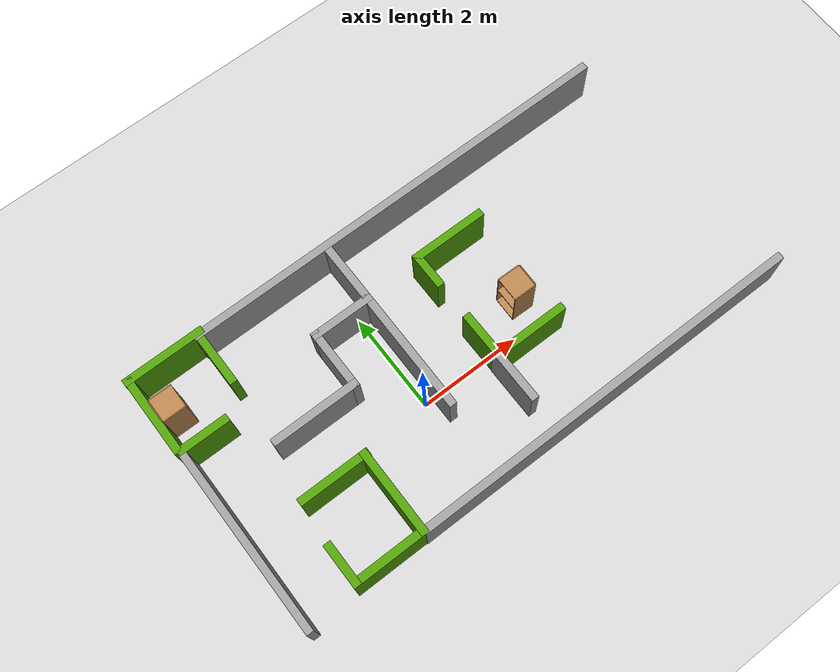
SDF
<sdf version="1.6">
 <world name="default">
  <model name="ground_plane">
   <static>1</static>
   <link name="link">
    <collision name="collision">
     <geometry><plane><normal>0 0 1</normal><size>100 100</size></plane></geometry>
     <surface><friction><ode><mu>100</mu><mu2>50</mu2></ode></friction></surface>
    </collision>
    <visual name="visual">
     <cast_shadows>0</cast_shadows>
     <geometry><plane><normal>0 0 1</normal><size>100 100</size></plane></geometry>
     <material>
      <script><uri>file://media/materials/scripts/gazebo.material</uri><name>Gazebo/Grey</name></script>
     </material>
    </visual>
   </link>
  </model>
  <model name="final_maze_v2">
   <link name="Wall_13">
    <pose>-5.19174 0.988606 0 0 -0 0</pose>
    <visual name="Wall_13_Visual">
     <pose>0 0 0.5 0 -0 0</pose>
     <geometry><box><size>1 0.15 1</size></box></geometry>
     <material>
      <script><uri>file://media/materials/scripts/gazebo.material</uri><name>Gazebo/Grey</name></script>
      <ambient>0.305882 0.603922 0.0235294 1</ambient>
      <shader type="pixel"/>
     </material>
     <meta><layer>0</layer></meta>
    </visual>
    <collision name="Wall_13_Collision">
     <pose>0 0 0.5 0 -0 0</pose>
     <geometry><box><size>1 0.15 1</size></box></geometry>
     <surface>
      <friction>
       <ode><mu>1</mu><mu2>1</mu2><fdir1>0 0 0</fdir1><slip1>0</slip1><slip2>0</slip2></ode>
       <torsional>
        <coefficient>1</coefficient>
        <patch_radius>0</patch_radius>
        <surface_radius>0</surface_radius>
        <use_patch_radius>1</use_patch_radius>
        <ode><slip>0</slip></ode>
       </torsional>
      </friction>
      <bounce><restitution_coefficient>0</restitution_coefficient><threshold>1e+06</threshold></bounce>
      <contact>
       <collide_without_contact>0</collide_without_contact>
       <collide_without_contact_bitmask>1</collide_without_contact_bitmask>
       <collide_bitmask>1</collide_bitmask>
       <ode>
        <soft_cfm>0</soft_cfm>
        <soft_erp>0.2</soft_erp>
        <kp>1e+13</kp>
        <kd>1</kd>
        <max_vel>0.01</max_vel>
        <min_depth>0</min_depth>
       </ode>
       <bullet>
        <split_impulse>1</split_impulse>
        <split_impulse_penetration_threshold>-0.01</split_impulse_penetration_threshold>
        <soft_cfm>0</soft_cfm>
        <soft_erp>0.2</soft_erp>
        <kp>1e+13</kp>
        <kd>1</kd>
       </bullet>
      </contact>
     </surface>
    </collision>
   </link>
   <link name="Wall_15">
    <pose>-4.27719 2.00796 0 0 0 -1.5708</pose>
    <inertial>
     <inertia><ixx>0</ixx><ixy>0</ixy><ixz>0</ixz><iyy>0</iyy><iyz>0</iyz><izz>0</izz></inertia>
     <mass>0</mass>
    </inertial>
    <visual name="Wall_15_Visual">
     <pose>0 0 0.5 0 -0 0</pose>
     <geometry><box><size>1.16992 0.15 1</size></box></geometry>
     <material>
      <script><uri>file://media/materials/scripts/gazebo.material</uri><name>Gazebo/Grey</name></script>
      <ambient>0.305882 0.603922 0.0235294 1</ambient>
      <shader type="pixel"/>
     </material>
     <meta><layer>0</layer></meta>
    </visual>
    <collision name="Wall_15_Collision">
     <pose>0 0 0.5 0 -0 0</pose>
     <geometry><box><size>1.16992 0.15 1</size></box></geometry>
     <surface>
      <friction>
       <ode><mu>1</mu><mu2>1</mu2><fdir1>0 0 0</fdir1><slip1>0</slip1><slip2>0</slip2></ode>
       <torsional>
        <coefficient>1</coefficient>
        <patch_radius>0</patch_radius>
        <surface_radius>0</surface_radius>
        <use_patch_radius>1</use_patch_radius>
        <ode><slip>0</slip></ode>
       </torsional>
      </friction>
      <bounce><restitution_coefficient>0</restitution_coefficient><threshold>1e+06</threshold></bounce>
      <contact>
       <collide_without_contact>0</collide_without_contact>
       <collide_without_contact_bitmask>1</collide_without_contact_bitmask>
       <collide_bitmask>1</collide_bitmask>
       <ode>
        <soft_cfm>0</soft_cfm>
        <soft_erp>0.2</soft_erp>
        <kp>1e+13</kp>
        <kd>1</kd>
        <max_vel>0.01</max_vel>
        <min_depth>0</min_depth>
       </ode>
       <bullet>
        <split_impulse>1</split_impulse>
        <split_impulse_penetration_threshold>-0.01</split_impulse_penetration_threshold>
        <soft_cfm>0</soft_cfm>
        <soft_erp>0.2</soft_erp>
        <kp>1e+13</kp>
        <kd>1</kd>
       </bullet>
      </contact>
     </surface>
    </collision>
   </link>
   <link name="Wall_17">
    <pose>-3.26274 -1.72039 0 0 -0 1.5708</pose>
    <visual name="Wall_17_Visual">
     <pose>0 0 0.5 0 -0 0</pose>
     <geometry><box><size>1.75 0.15 1</size></box></geometry>
     <material>
      <script><uri>file://media/materials/scripts/gazebo.material</uri><name>Gazebo/Grey</name></script>
      <ambient>0.305882 0.603922 0.0235294 1</ambient>
      <shader type="pixel"/>
     </material>
     <meta><layer>0</layer></meta>
    </visual>
    <collision name="Wall_17_Collision">
     <pose>0 0 0.5 0 -0 0</pose>
     <geometry><box><size>1.75 0.15 1</size></box></geometry>
     <surface>
      <friction>
       <ode><mu>1</mu><mu2>1</mu2><fdir1>0 0 0</fdir1><slip1>0</slip1><slip2>0</slip2></ode>
       <torsional>
        <coefficient>1</coefficient>
        <patch_radius>0</patch_radius>
        <surface_radius>0</surface_radius>
        <use_patch_radius>1</use_patch_radius>
        <ode><slip>0</slip></ode>
       </torsional>
      </friction>
      <bounce><restitution_coefficient>0</restitution_coefficient><threshold>1e+06</threshold></bounce>
      <contact>
       <collide_without_contact>0</collide_without_contact>
       <collide_without_contact_bitmask>1</collide_without_contact_bitmask>
       <collide_bitmask>1</collide_bitmask>
       <ode>
        <soft_cfm>0</soft_cfm>
        <soft_erp>0.2</soft_erp>
        <kp>1e+13</kp>
        <kd>1</kd>
        <max_vel>0.01</max_vel>
        <min_depth>0</min_depth>
       </ode>
       <bullet>
        <split_impulse>1</split_impulse>
        <split_impulse_penetration_threshold>-0.01</split_impulse_penetration_threshold>
        <soft_cfm>0</soft_cfm>
        <soft_erp>0.2</soft_erp>
        <kp>1e+13</kp>
        <kd>1</kd>
       </bullet>
      </contact>
     </surface>
    </collision>
   </link>
   <link name="Wall_17_clone">
    <pose>-4.61531 -2.15743 0 0 -0 1.5708</pose>
    <inertial>
     <inertia><ixx>0</ixx><ixy>0</ixy><ixz>0</ixz><iyy>0</iyy><iyz>0</iyz><izz>0</izz></inertia>
     <mass>0</mass>
    </inertial>
    <visual name="Wall_17_Visual">
     <pose>0 0 0.5 0 -0 0</pose>
     <geometry><box><size>0.870384 0.15 1</size></box></geometry>
     <material>
      <script><uri>file://media/materials/scripts/gazebo.material</uri><name>Gazebo/Grey</name></script>
      <ambient>0.305882 0.603922 0.0235294 1</ambient>
      <shader type="pixel"/>
     </material>
     <meta><layer>0</layer></meta>
    </visual>
    <collision name="Wall_17_Collision">
     <pose>0 0 0.5 0 -0 0</pose>
     <geometry><box><size>0.870384 0.15 1</size></box></geometry>
     <surface>
      <friction>
       <ode><mu>1</mu><mu2>1</mu2><fdir1>0 0 0</fdir1><slip1>0</slip1><slip2>0</slip2></ode>
       <torsional>
        <coefficient>1</coefficient>
        <patch_radius>0</patch_radius>
        <surface_radius>0</surface_radius>
        <use_patch_radius>1</use_patch_radius>
        <ode><slip>0</slip></ode>
       </torsional>
      </friction>
      <bounce><restitution_coefficient>0</restitution_coefficient><threshold>1e+06</threshold></bounce>
      <contact>
       <collide_without_contact>0</collide_without_contact>
       <collide_without_contact_bitmask>1</collide_without_contact_bitmask>
       <collide_bitmask>1</collide_bitmask>
       <ode>
        <soft_cfm>0</soft_cfm>
        <soft_erp>0.2</soft_erp>
        <kp>1e+13</kp>
        <kd>1</kd>
        <max_vel>0.01</max_vel>
        <min_depth>0</min_depth>
       </ode>
       <bullet>
        <split_impulse>1</split_impulse>
        <split_impulse_penetration_threshold>-0.01</split_impulse_penetration_threshold>
        <soft_cfm>0</soft_cfm>
        <soft_erp>0.2</soft_erp>
        <kp>1e+13</kp>
        <kd>1</kd>
       </bullet>
      </contact>
     </surface>
    </collision>
   </link>
   <link name="Wall_18">
    <pose>-3.88391 -0.920394 0 0 -0 3.14159</pose>
    <inertial>
     <inertia><ixx>0</ixx><ixy>0</ixy><ixz>0</ixz><iyy>0</iyy><iyz>0</iyz><izz>0</izz></inertia>
     <mass>0</mass>
    </inertial>
    <visual name="Wall_18_Visual">
     <pose>0 0 0.5 0 -0 0</pose>
     <geometry><box><size>1.41475 0.15 1</size></box></geometry>
     <material>
      <script><uri>file://media/materials/scripts/gazebo.material</uri><name>Gazebo/Grey</name></script>
      <ambient>0.305882 0.603922 0.0235294 1</ambient>
      <shader type="pixel"/>
     </material>
     <meta><layer>0</layer></meta>
    </visual>
    <collision name="Wall_18_Collision">
     <pose>0 0 0.5 0 -0 0</pose>
     <geometry><box><size>1.41475 0.15 1</size></box></geometry>
     <surface>
      <friction>
       <ode><mu>1</mu><mu2>1</mu2><fdir1>0 0 0</fdir1><slip1>0</slip1><slip2>0</slip2></ode>
       <torsional>
        <coefficient>1</coefficient>
        <patch_radius>0</patch_radius>
        <surface_radius>0</surface_radius>
        <use_patch_radius>1</use_patch_radius>
        <ode><slip>0</slip></ode>
       </torsional>
      </friction>
      <bounce><restitution_coefficient>0</restitution_coefficient><threshold>1e+06</threshold></bounce>
      <contact>
       <collide_without_contact>0</collide_without_contact>
       <collide_without_contact_bitmask>1</collide_without_contact_bitmask>
       <collide_bitmask>1</collide_bitmask>
       <ode>
        <soft_cfm>0</soft_cfm>
        <soft_erp>0.2</soft_erp>
        <kp>1e+13</kp>
        <kd>1</kd>
        <max_vel>0.01</max_vel>
        <min_depth>0</min_depth>
       </ode>
       <bullet>
        <split_impulse>1</split_impulse>
        <split_impulse_penetration_threshold>-0.01</split_impulse_penetration_threshold>
        <soft_cfm>0</soft_cfm>
        <soft_erp>0.2</soft_erp>
        <kp>1e+13</kp>
        <kd>1</kd>
       </bullet>
      </contact>
     </surface>
    </collision>
   </link>
   <link name="Wall_20">
    <pose>-3.48874 0.163606 0 0 -0 0</pose>
    <visual name="Wall_20_Visual">
     <pose>0 0 0.5 0 -0 0</pose>
     <geometry><box><size>1.75 0.15 1</size></box></geometry>
     <material>
      <script><uri>file://media/materials/scripts/gazebo.material</uri><name>Gazebo/Grey</name></script>
      <ambient>1 1 1 1</ambient>
      <shader type="pixel"/>
     </material>
     <meta><layer>0</layer></meta>
    </visual>
    <collision name="Wall_20_Collision">
     <pose>0 0 0.5 0 -0 0</pose>
     <geometry><box><size>1.75 0.15 1</size></box></geometry>
     <surface>
      <friction>
       <ode><mu>1</mu><mu2>1</mu2><fdir1>0 0 0</fdir1><slip1>0</slip1><slip2>0</slip2></ode>
       <torsional>
        <coefficient>1</coefficient>
        <patch_radius>0</patch_radius>
        <surface_radius>0</surface_radius>
        <use_patch_radius>1</use_patch_radius>
        <ode><slip>0</slip></ode>
       </torsional>
      </friction>
      <bounce><restitution_coefficient>0</restitution_coefficient><threshold>1e+06</threshold></bounce>
      <contact>
       <collide_without_contact>0</collide_without_contact>
       <collide_without_contact_bitmask>1</collide_without_contact_bitmask>
       <collide_bitmask>1</collide_bitmask>
       <ode>
        <soft_cfm>0</soft_cfm>
        <soft_erp>0.2</soft_erp>
        <kp>1e+13</kp>
        <kd>1</kd>
        <max_vel>0.01</max_vel>
        <min_depth>0</min_depth>
       </ode>
       <bullet>
        <split_impulse>1</split_impulse>
        <split_impulse_penetration_threshold>-0.01</split_impulse_penetration_threshold>
        <soft_cfm>0</soft_cfm>
        <soft_erp>0.2</soft_erp>
        <kp>1e+13</kp>
        <kd>1</kd>
       </bullet>
      </contact>
     </surface>
    </collision>
   </link>
   <link name="Wall_21">
    <pose>-2.68873 0.713606 0 0 -0 1.5708</pose>
    <visual name="Wall_21_Visual">
     <pose>0 0 0.5 0 -0 0</pose>
     <geometry><box><size>1.25 0.15 1</size></box></geometry>
     <material>
      <script><uri>file://media/materials/scripts/gazebo.material</uri><name>Gazebo/Grey</name></script>
      <ambient>1 1 1 1</ambient>
      <shader type="pixel"/>
     </material>
     <meta><layer>0</layer></meta>
    </visual>
    <collision name="Wall_21_Collision">
     <pose>0 0 0.5 0 -0 0</pose>
     <geometry><box><size>1.25 0.15 1</size></box></geometry>
     <surface>
      <friction>
       <ode><mu>1</mu><mu2>1</mu2><fdir1>0 0 0</fdir1><slip1>0</slip1><slip2>0</slip2></ode>
       <torsional>
        <coefficient>1</coefficient>
        <patch_radius>0</patch_radius>
        <surface_radius>0</surface_radius>
        <use_patch_radius>1</use_patch_radius>
        <ode><slip>0</slip></ode>
       </torsional>
      </friction>
      <bounce><restitution_coefficient>0</restitution_coefficient><threshold>1e+06</threshold></bounce>
      <contact>
       <collide_without_contact>0</collide_without_contact>
       <collide_without_contact_bitmask>1</collide_without_contact_bitmask>
       <collide_bitmask>1</collide_bitmask>
       <ode>
        <soft_cfm>0</soft_cfm>
        <soft_erp>0.2</soft_erp>
        <kp>1e+13</kp>
        <kd>1</kd>
        <max_vel>0.01</max_vel>
        <min_depth>0</min_depth>
       </ode>
       <bullet>
        <split_impulse>1</split_impulse>
        <split_impulse_penetration_threshold>-0.01</split_impulse_penetration_threshold>
        <soft_cfm>0</soft_cfm>
        <soft_erp>0.2</soft_erp>
        <kp>1e+13</kp>
        <kd>1</kd>
       </bullet>
      </contact>
     </surface>
    </collision>
   </link>
   <link name="Wall_22">
    <pose>-2.13874 1.26361 0 0 -0 0</pose>
    <visual name="Wall_22_Visual">
     <pose>0 0 0.5 0 -0 0</pose>
     <geometry><box><size>1.25 0.15 1</size></box></geometry>
     <material>
      <script><uri>file://media/materials/scripts/gazebo.material</uri><name>Gazebo/Grey</name></script>
      <ambient>1 1 1 1</ambient>
      <shader type="pixel"/>
     </material>
     <meta><layer>0</layer></meta>
    </visual>
    <collision name="Wall_22_Collision">
     <pose>0 0 0.5 0 -0 0</pose>
     <geometry><box><size>1.25 0.15 1</size></box></geometry>
     <surface>
      <friction>
       <ode><mu>1</mu><mu2>1</mu2><fdir1>0 0 0</fdir1><slip1>0</slip1><slip2>0</slip2></ode>
       <torsional>
        <coefficient>1</coefficient>
        <patch_radius>0</patch_radius>
        <surface_radius>0</surface_radius>
        <use_patch_radius>1</use_patch_radius>
        <ode><slip>0</slip></ode>
       </torsional>
      </friction>
      <bounce><restitution_coefficient>0</restitution_coefficient><threshold>1e+06</threshold></bounce>
      <contact>
       <collide_without_contact>0</collide_without_contact>
       <collide_without_contact_bitmask>1</collide_without_contact_bitmask>
       <collide_bitmask>1</collide_bitmask>
       <ode>
        <soft_cfm>0</soft_cfm>
        <soft_erp>0.2</soft_erp>
        <kp>1e+13</kp>
        <kd>1</kd>
        <max_vel>0.01</max_vel>
        <min_depth>0</min_depth>
       </ode>
       <bullet>
        <split_impulse>1</split_impulse>
        <split_impulse_penetration_threshold>-0.01</split_impulse_penetration_threshold>
        <soft_cfm>0</soft_cfm>
        <soft_erp>0.2</soft_erp>
        <kp>1e+13</kp>
        <kd>1</kd>
       </bullet>
      </contact>
     </surface>
    </collision>
   </link>
   <link name="Wall_23">
    <pose>-1.58874 1.81361 0 0 -0 1.5708</pose>
    <visual name="Wall_23_Visual">
     <pose>0 0 0.5 0 -0 0</pose>
     <geometry><box><size>1.25 0.15 1</size></box></geometry>
     <material>
      <script><uri>file://media/materials/scripts/gazebo.material</uri><name>Gazebo/Grey</name></script>
      <ambient>1 1 1 1</ambient>
      <shader type="pixel"/>
     </material>
     <meta><layer>0</layer></meta>
    </visual>
    <collision name="Wall_23_Collision">
     <pose>0 0 0.5 0 -0 0</pose>
     <geometry><box><size>1.25 0.15 1</size></box></geometry>
     <surface>
      <friction>
       <ode><mu>1</mu><mu2>1</mu2><fdir1>0 0 0</fdir1><slip1>0</slip1><slip2>0</slip2></ode>
       <torsional>
        <coefficient>1</coefficient>
        <patch_radius>0</patch_radius>
        <surface_radius>0</surface_radius>
        <use_patch_radius>1</use_patch_radius>
        <ode><slip>0</slip></ode>
       </torsional>
      </friction>
      <bounce><restitution_coefficient>0</restitution_coefficient><threshold>1e+06</threshold></bounce>
      <contact>
       <collide_without_contact>0</collide_without_contact>
       <collide_without_contact_bitmask>1</collide_without_contact_bitmask>
       <collide_bitmask>1</collide_bitmask>
       <ode>
        <soft_cfm>0</soft_cfm>
        <soft_erp>0.2</soft_erp>
        <kp>1e+13</kp>
        <kd>1</kd>
        <max_vel>0.01</max_vel>
        <min_depth>0</min_depth>
       </ode>
       <bullet>
        <split_impulse>1</split_impulse>
        <split_impulse_penetration_threshold>-0.01</split_impulse_penetration_threshold>
        <soft_cfm>0</soft_cfm>
        <soft_erp>0.2</soft_erp>
        <kp>1e+13</kp>
        <kd>1</kd>
       </bullet>
      </contact>
     </surface>
    </collision>
   </link>
   <link name="Wall_25">
    <pose>-1.58874 0.088606 0 0 0 -1.5708</pose>
    <visual name="Wall_25_Visual">
     <pose>0 0 0.5 0 -0 0</pose>
     <geometry><box><size>2.5 0.15 1</size></box></geometry>
     <material>
      <script><uri>file://media/materials/scripts/gazebo.material</uri><name>Gazebo/Grey</name></script>
      <ambient>1 1 1 1</ambient>
      <shader type="pixel"/>
     </material>
     <meta><layer>0</layer></meta>
    </visual>
    <collision name="Wall_25_Collision">
     <pose>0 0 0.5 0 -0 0</pose>
     <geometry><box><size>2.5 0.15 1</size></box></geometry>
     <surface>
      <friction>
       <ode><mu>1</mu><mu2>1</mu2><fdir1>0 0 0</fdir1><slip1>0</slip1><slip2>0</slip2></ode>
       <torsional>
        <coefficient>1</coefficient>
        <patch_radius>0</patch_radius>
        <surface_radius>0</surface_radius>
        <use_patch_radius>1</use_patch_radius>
        <ode><slip>0</slip></ode>
       </torsional>
      </friction>
      <bounce><restitution_coefficient>0</restitution_coefficient><threshold>1e+06</threshold></bounce>
      <contact>
       <collide_without_contact>0</collide_without_contact>
       <collide_without_contact_bitmask>1</collide_without_contact_bitmask>
       <collide_bitmask>1</collide_bitmask>
       <ode>
        <soft_cfm>0</soft_cfm>
        <soft_erp>0.2</soft_erp>
        <kp>1e+13</kp>
        <kd>1</kd>
        <max_vel>0.01</max_vel>
        <min_depth>0</min_depth>
       </ode>
       <bullet>
        <split_impulse>1</split_impulse>
        <split_impulse_penetration_threshold>-0.01</split_impulse_penetration_threshold>
        <soft_cfm>0</soft_cfm>
        <soft_erp>0.2</soft_erp>
        <kp>1e+13</kp>
        <kd>1</kd>
       </bullet>
      </contact>
     </surface>
    </collision>
   </link>
   <link name="Wall_27">
    <pose>-0.439735 1.04861 0 0 -0 1.5708</pose>
    <visual name="Wall_27_Visual">
     <pose>0 0 0.5 0 -0 0</pose>
     <geometry><box><size>0.75 0.15 1</size></box></geometry>
     <material>
      <script><uri>file://media/materials/scripts/gazebo.material</uri><name>Gazebo/Grey</name></script>
      <ambient>0.305882 0.603922 0.0235294 1</ambient>
      <shader type="pixel"/>
     </material>
     <meta><layer>0</layer></meta>
    </visual>
    <collision name="Wall_27_Collision">
     <pose>0 0 0.5 0 -0 0</pose>
     <geometry><box><size>0.75 0.15 1</size></box></geometry>
     <surface>
      <friction>
       <ode><mu>1</mu><mu2>1</mu2><fdir1>0 0 0</fdir1><slip1>0</slip1><slip2>0</slip2></ode>
       <torsional>
        <coefficient>1</coefficient>
        <patch_radius>0</patch_radius>
        <surface_radius>0</surface_radius>
        <use_patch_radius>1</use_patch_radius>
        <ode><slip>0</slip></ode>
       </torsional>
      </friction>
      <bounce><restitution_coefficient>0</restitution_coefficient><threshold>1e+06</threshold></bounce>
      <contact>
       <collide_without_contact>0</collide_without_contact>
       <collide_without_contact_bitmask>1</collide_without_contact_bitmask>
       <collide_bitmask>1</collide_bitmask>
       <ode>
        <soft_cfm>0</soft_cfm>
        <soft_erp>0.2</soft_erp>
        <kp>1e+13</kp>
        <kd>1</kd>
        <max_vel>0.01</max_vel>
        <min_depth>0</min_depth>
       </ode>
       <bullet>
        <split_impulse>1</split_impulse>
        <split_impulse_penetration_threshold>-0.01</split_impulse_penetration_threshold>
        <soft_cfm>0</soft_cfm>
        <soft_erp>0.2</soft_erp>
        <kp>1e+13</kp>
        <kd>1</kd>
       </bullet>
      </contact>
     </surface>
    </collision>
   </link>
   <link name="Wall_28">
    <pose>0.235265 1.34861 0 0 -0 0</pose>
    <visual name="Wall_28_Visual">
     <pose>0 0 0.5 0 -0 0</pose>
     <geometry><box><size>1.5 0.15 1</size></box></geometry>
     <material>
      <script><uri>file://media/materials/scripts/gazebo.material</uri><name>Gazebo/Grey</name></script>
      <ambient>0.305882 0.603922 0.0235294 1</ambient>
      <shader type="pixel"/>
     </material>
     <meta><layer>0</layer></meta>
    </visual>
    <collision name="Wall_28_Collision">
     <pose>0 0 0.5 0 -0 0</pose>
     <geometry><box><size>1.5 0.15 1</size></box></geometry>
     <surface>
      <friction>
       <ode><mu>1</mu><mu2>1</mu2><fdir1>0 0 0</fdir1><slip1>0</slip1><slip2>0</slip2></ode>
       <torsional>
        <coefficient>1</coefficient>
        <patch_radius>0</patch_radius>
        <surface_radius>0</surface_radius>
        <use_patch_radius>1</use_patch_radius>
        <ode><slip>0</slip></ode>
       </torsional>
      </friction>
      <bounce><restitution_coefficient>0</restitution_coefficient><threshold>1e+06</threshold></bounce>
      <contact>
       <collide_without_contact>0</collide_without_contact>
       <collide_without_contact_bitmask>1</collide_without_contact_bitmask>
       <collide_bitmask>1</collide_bitmask>
       <ode>
        <soft_cfm>0</soft_cfm>
        <soft_erp>0.2</soft_erp>
        <kp>1e+13</kp>
        <kd>1</kd>
        <max_vel>0.01</max_vel>
        <min_depth>0</min_depth>
       </ode>
       <bullet>
        <split_impulse>1</split_impulse>
        <split_impulse_penetration_threshold>-0.01</split_impulse_penetration_threshold>
        <soft_cfm>0</soft_cfm>
        <soft_erp>0.2</soft_erp>
        <kp>1e+13</kp>
        <kd>1</kd>
       </bullet>
      </contact>
     </surface>
    </collision>
   </link>
   <link name="Wall_3">
    <pose>0.673122 -2.53429 0 0 -0 0</pose>
    <inertial>
     <inertia><ixx>0</ixx><ixy>0</ixy><ixz>0</ixz><iyy>0</iyy><iyz>0</iyz><izz>0</izz></inertia>
     <mass>0</mass>
    </inertial>
    <visual name="Wall_3_Visual">
     <pose>0 0 0.5 0 -0 0</pose>
     <geometry><box><size>7.88308 0.15 1</size></box></geometry>
     <material>
      <script><uri>file://media/materials/scripts/gazebo.material</uri><name>Gazebo/Grey</name></script>
      <ambient>1 1 1 1</ambient>
      <shader type="pixel"/>
     </material>
     <meta><layer>0</layer></meta>
    </visual>
    <collision name="Wall_3_Collision">
     <pose>0 0 0.5 0 -0 0</pose>
     <geometry><box><size>7.88308 0.15 1</size></box></geometry>
     <surface>
      <friction>
       <ode><mu>1</mu><mu2>1</mu2><fdir1>0 0 0</fdir1><slip1>0</slip1><slip2>0</slip2></ode>
       <torsional>
        <coefficient>1</coefficient>
        <patch_radius>0</patch_radius>
        <surface_radius>0</surface_radius>
        <use_patch_radius>1</use_patch_radius>
        <ode><slip>0</slip></ode>
       </torsional>
      </friction>
      <bounce><restitution_coefficient>0</restitution_coefficient><threshold>1e+06</threshold></bounce>
      <contact>
       <collide_without_contact>0</collide_without_contact>
       <collide_without_contact_bitmask>1</collide_without_contact_bitmask>
       <collide_bitmask>1</collide_bitmask>
       <ode>
        <soft_cfm>0</soft_cfm>
        <soft_erp>0.2</soft_erp>
        <kp>1e+13</kp>
        <kd>1</kd>
        <max_vel>0.01</max_vel>
        <min_depth>0</min_depth>
       </ode>
       <bullet>
        <split_impulse>1</split_impulse>
        <split_impulse_penetration_threshold>-0.01</split_impulse_penetration_threshold>
        <soft_cfm>0</soft_cfm>
        <soft_erp>0.2</soft_erp>
        <kp>1e+13</kp>
        <kd>1</kd>
       </bullet>
      </contact>
     </surface>
    </collision>
   </link>
   <link name="Wall_31">
    <pose>0.250265 -0.917394 0 0 -0 3.14159</pose>
    <visual name="Wall_31_Visual">
     <pose>0 0 0.5 0 -0 0</pose>
     <geometry><box><size>1.5 0.15 1</size></box></geometry>
     <material>
      <script><uri>file://media/materials/scripts/gazebo.material</uri><name>Gazebo/Grey</name></script>
      <ambient>0.305882 0.603922 0.0235294 1</ambient>
      <shader type="pixel"/>
     </material>
     <meta><layer>0</layer></meta>
    </visual>
    <collision name="Wall_31_Collision">
     <pose>0 0 0.5 0 -0 0</pose>
     <geometry><box><size>1.5 0.15 1</size></box></geometry>
     <surface>
      <friction>
       <ode><mu>1</mu><mu2>1</mu2><fdir1>0 0 0</fdir1><slip1>0</slip1><slip2>0</slip2></ode>
       <torsional>
        <coefficient>1</coefficient>
        <patch_radius>0</patch_radius>
        <surface_radius>0</surface_radius>
        <use_patch_radius>1</use_patch_radius>
        <ode><slip>0</slip></ode>
       </torsional>
      </friction>
      <bounce><restitution_coefficient>0</restitution_coefficient><threshold>1e+06</threshold></bounce>
      <contact>
       <collide_without_contact>0</collide_without_contact>
       <collide_without_contact_bitmask>1</collide_without_contact_bitmask>
       <collide_bitmask>1</collide_bitmask>
       <ode>
        <soft_cfm>0</soft_cfm>
        <soft_erp>0.2</soft_erp>
        <kp>1e+13</kp>
        <kd>1</kd>
        <max_vel>0.01</max_vel>
        <min_depth>0</min_depth>
       </ode>
       <bullet>
        <split_impulse>1</split_impulse>
        <split_impulse_penetration_threshold>-0.01</split_impulse_penetration_threshold>
        <soft_cfm>0</soft_cfm>
        <soft_erp>0.2</soft_erp>
        <kp>1e+13</kp>
        <kd>1</kd>
       </bullet>
      </contact>
     </surface>
    </collision>
   </link>
   <link name="Wall_33">
    <pose>-0.433794 -1.38953 0 0 0 -1.5708</pose>
    <inertial>
     <inertia><ixx>0</ixx><ixy>0</ixy><ixz>0</ixz><iyy>0</iyy><iyz>0</iyz><izz>0</izz></inertia>
     <mass>0</mass>
    </inertial>
    <visual name="Wall_33_Visual">
     <pose>0 0 0.5 0 -0 0</pose>
     <geometry><box><size>1.07217 0.15 1</size></box></geometry>
     <material>
      <script><uri>file://media/materials/scripts/gazebo.material</uri><name>Gazebo/Grey</name></script>
      <ambient>1 1 1 1</ambient>
      <shader type="pixel"/>
     </material>
     <meta><layer>0</layer></meta>
    </visual>
    <collision name="Wall_33_Collision">
     <pose>0 0 0.5 0 -0 0</pose>
     <geometry><box><size>1.07217 0.15 1</size></box></geometry>
     <surface>
      <friction>
       <ode><mu>1</mu><mu2>1</mu2><fdir1>0 0 0</fdir1><slip1>0</slip1><slip2>0</slip2></ode>
       <torsional>
        <coefficient>1</coefficient>
        <patch_radius>0</patch_radius>
        <surface_radius>0</surface_radius>
        <use_patch_radius>1</use_patch_radius>
        <ode><slip>0</slip></ode>
       </torsional>
      </friction>
      <bounce><restitution_coefficient>0</restitution_coefficient><threshold>1e+06</threshold></bounce>
      <contact>
       <collide_without_contact>0</collide_without_contact>
       <collide_without_contact_bitmask>1</collide_without_contact_bitmask>
       <collide_bitmask>1</collide_bitmask>
       <ode>
        <soft_cfm>0</soft_cfm>
        <soft_erp>0.2</soft_erp>
        <kp>1e+13</kp>
        <kd>1</kd>
        <max_vel>0.01</max_vel>
        <min_depth>0</min_depth>
       </ode>
       <bullet>
        <split_impulse>1</split_impulse>
        <split_impulse_penetration_threshold>-0.01</split_impulse_penetration_threshold>
        <soft_cfm>0</soft_cfm>
        <soft_erp>0.2</soft_erp>
        <kp>1e+13</kp>
        <kd>1</kd>
       </bullet>
      </contact>
     </surface>
    </collision>
   </link>
   <link name="Wall_6">
    <pose>-0.003764 2.51077 0 0 0 -3.14036</pose>
    <inertial>
     <inertia><ixx>0</ixx><ixy>0</ixy><ixz>0</ixz><iyy>0</iyy><iyz>0</iyz><izz>0</izz></inertia>
     <mass>0</mass>
    </inertial>
    <visual name="Wall_6_Visual">
     <pose>0 0 0.5 0 -0 0</pose>
     <geometry><box><size>8.72963 0.15 1</size></box></geometry>
     <material>
      <script><uri>file://media/materials/scripts/gazebo.material</uri><name>Gazebo/Grey</name></script>
      <ambient>1 1 1 1</ambient>
      <shader type="pixel"/>
     </material>
     <meta><layer>0</layer></meta>
    </visual>
    <collision name="Wall_6_Collision">
     <pose>0 0 0.5 0 -0 0</pose>
     <geometry><box><size>8.72963 0.15 1</size></box></geometry>
     <surface>
      <friction>
       <ode><mu>1</mu><mu2>1</mu2><fdir1>0 0 0</fdir1><slip1>0</slip1><slip2>0</slip2></ode>
       <torsional>
        <coefficient>1</coefficient>
        <patch_radius>0</patch_radius>
        <surface_radius>0</surface_radius>
        <use_patch_radius>1</use_patch_radius>
        <ode><slip>0</slip></ode>
       </torsional>
      </friction>
      <bounce><restitution_coefficient>0</restitution_coefficient><threshold>1e+06</threshold></bounce>
      <contact>
       <collide_without_contact>0</collide_without_contact>
       <collide_without_contact_bitmask>1</collide_without_contact_bitmask>
       <collide_bitmask>1</collide_bitmask>
       <ode>
        <soft_cfm>0</soft_cfm>
        <soft_erp>0.2</soft_erp>
        <kp>1e+13</kp>
        <kd>1</kd>
        <max_vel>0.01</max_vel>
        <min_depth>0</min_depth>
       </ode>
       <bullet>
        <split_impulse>1</split_impulse>
        <split_impulse_penetration_threshold>-0.01</split_impulse_penetration_threshold>
        <soft_cfm>0</soft_cfm>
        <soft_erp>0.2</soft_erp>
        <kp>1e+13</kp>
        <kd>1</kd>
       </bullet>
      </contact>
     </surface>
    </collision>
   </link>
   <link name="Wall_60">
    <pose>-5.67274 1.78539 0 0 0 -1.5708</pose>
    <inertial>
     <inertia><ixx>0</ixx><ixy>0</ixy><ixz>0</ixz><iyy>0</iyy><iyz>0</iyz><izz>0</izz></inertia>
     <mass>0</mass>
    </inertial>
    <visual name="Wall_60_Visual">
     <pose>0 0 0.5 0 -0 0</pose>
     <geometry><box><size>1.59713 0.15 1</size></box></geometry>
     <material>
      <script><uri>file://media/materials/scripts/gazebo.material</uri><name>Gazebo/Grey</name></script>
      <ambient>0.305882 0.603922 0.0235294 1</ambient>
      <shader type="pixel"/>
     </material>
     <meta><layer>0</layer></meta>
    </visual>
    <collision name="Wall_60_Collision">
     <pose>0 0 0.5 0 -0 0</pose>
     <geometry><box><size>1.59713 0.15 1</size></box></geometry>
     <surface>
      <friction>
       <ode><mu>1</mu><mu2>1</mu2><fdir1>0 0 0</fdir1><slip1>0</slip1><slip2>0</slip2></ode>
       <torsional>
        <coefficient>1</coefficient>
        <patch_radius>0</patch_radius>
        <surface_radius>0</surface_radius>
        <use_patch_radius>1</use_patch_radius>
        <ode><slip>0</slip></ode>
       </torsional>
      </friction>
      <bounce><restitution_coefficient>0</restitution_coefficient><threshold>1e+06</threshold></bounce>
      <contact>
       <collide_without_contact>0</collide_without_contact>
       <collide_without_contact_bitmask>1</collide_without_contact_bitmask>
       <collide_bitmask>1</collide_bitmask>
       <ode>
        <soft_cfm>0</soft_cfm>
        <soft_erp>0.2</soft_erp>
        <kp>1e+13</kp>
        <kd>1</kd>
        <max_vel>0.01</max_vel>
        <min_depth>0</min_depth>
       </ode>
       <bullet>
        <split_impulse>1</split_impulse>
        <split_impulse_penetration_threshold>-0.01</split_impulse_penetration_threshold>
        <soft_cfm>0</soft_cfm>
        <soft_erp>0.2</soft_erp>
        <kp>1e+13</kp>
        <kd>1</kd>
       </bullet>
      </contact>
     </surface>
    </collision>
   </link>
   <link name="Wall_60_clone">
    <pose>-4.95751 2.54531 0 0 0 -3.13908</pose>
    <inertial>
     <inertia><ixx>0</ixx><ixy>0</ixy><ixz>0</ixz><iyy>0</iyy><iyz>0</iyz><izz>0</izz></inertia>
     <mass>0</mass>
    </inertial>
    <visual name="Wall_60_Visual">
     <pose>0 0 0.5 0 -0 0</pose>
     <geometry><box><size>1.59713 0.15 1</size></box></geometry>
     <material>
      <script><uri>file://media/materials/scripts/gazebo.material</uri><name>Gazebo/Grey</name></script>
      <ambient>0.305882 0.603922 0.0235294 1</ambient>
      <shader type="pixel"/>
     </material>
     <meta><layer>0</layer></meta>
    </visual>
    <collision name="Wall_60_Collision">
     <pose>0 0 0.5 0 -0 0</pose>
     <geometry><box><size>1.59713 0.15 1</size></box></geometry>
     <surface>
      <friction>
       <ode><mu>1</mu><mu2>1</mu2><fdir1>0 0 0</fdir1><slip1>0</slip1><slip2>0</slip2></ode>
       <torsional>
        <coefficient>1</coefficient>
        <patch_radius>0</patch_radius>
        <surface_radius>0</surface_radius>
        <use_patch_radius>1</use_patch_radius>
        <ode><slip>0</slip></ode>
       </torsional>
      </friction>
      <bounce><restitution_coefficient>0</restitution_coefficient><threshold>1e+06</threshold></bounce>
      <contact>
       <collide_without_contact>0</collide_without_contact>
       <collide_without_contact_bitmask>1</collide_without_contact_bitmask>
       <collide_bitmask>1</collide_bitmask>
       <ode>
        <soft_cfm>0</soft_cfm>
        <soft_erp>0.2</soft_erp>
        <kp>1e+13</kp>
        <kd>1</kd>
        <max_vel>0.01</max_vel>
        <min_depth>0</min_depth>
       </ode>
       <bullet>
        <split_impulse>1</split_impulse>
        <split_impulse_penetration_threshold>-0.01</split_impulse_penetration_threshold>
        <soft_cfm>0</soft_cfm>
        <soft_erp>0.2</soft_erp>
        <kp>1e+13</kp>
        <kd>1</kd>
       </bullet>
      </contact>
     </surface>
    </collision>
   </link>
   <link name="Wall_62_clone_0">
    <pose>-0.429244 -0.47996 0 0 0 -1.56418</pose>
    <inertial>
     <inertia><ixx>0</ixx><ixy>0</ixy><ixz>0</ixz><iyy>0</iyy><iyz>0</iyz><izz>0</izz></inertia>
     <mass>0</mass>
    </inertial>
    <visual name="Wall_62_Visual">
     <pose>0 0 0.5 0 -0 0</pose>
     <geometry><box><size>0.927565 0.15 1</size></box></geometry>
     <material>
      <script><uri>file://media/materials/scripts/gazebo.material</uri><name>Gazebo/Grey</name></script>
      <ambient>0.305882 0.603922 0.0235294 1</ambient>
      <shader type="pixel"/>
     </material>
     <meta><layer>0</layer></meta>
    </visual>
    <collision name="Wall_62_Collision">
     <pose>0 0 0.5 0 -0 0</pose>
     <geometry><box><size>0.927565 0.15 1</size></box></geometry>
     <surface>
      <friction>
       <ode><mu>1</mu><mu2>1</mu2><fdir1>0 0 0</fdir1><slip1>0</slip1><slip2>0</slip2></ode>
       <torsional>
        <coefficient>1</coefficient>
        <patch_radius>0</patch_radius>
        <surface_radius>0</surface_radius>
        <use_patch_radius>1</use_patch_radius>
        <ode><slip>0</slip></ode>
       </torsional>
      </friction>
      <bounce><restitution_coefficient>0</restitution_coefficient><threshold>1e+06</threshold></bounce>
      <contact>
       <collide_without_contact>0</collide_without_contact>
       <collide_without_contact_bitmask>1</collide_without_contact_bitmask>
       <collide_bitmask>1</collide_bitmask>
       <ode>
        <soft_cfm>0</soft_cfm>
        <soft_erp>0.2</soft_erp>
        <kp>1e+13</kp>
        <kd>1</kd>
        <max_vel>0.01</max_vel>
        <min_depth>0</min_depth>
       </ode>
       <bullet>
        <split_impulse>1</split_impulse>
        <split_impulse_penetration_threshold>-0.01</split_impulse_penetration_threshold>
        <soft_cfm>0</soft_cfm>
        <soft_erp>0.2</soft_erp>
        <kp>1e+13</kp>
        <kd>1</kd>
       </bullet>
      </contact>
     </surface>
    </collision>
   </link>
   <link name="Wall_75">
    <pose>-3.93773 -2.52039 0 0 -0 3.14159</pose>
    <visual name="Wall_75_Visual">
     <pose>0 0 0.5 0 -0 0</pose>
     <geometry><box><size>1.5 0.15 1</size></box></geometry>
     <material>
      <script><uri>file://media/materials/scripts/gazebo.material</uri><name>Gazebo/Grey</name></script>
      <ambient>0.305882 0.603922 0.0235294 1</ambient>
      <shader type="pixel"/>
     </material>
     <meta><layer>0</layer></meta>
    </visual>
    <collision name="Wall_75_Collision">
     <pose>0 0 0.5 0 -0 0</pose>
     <geometry><box><size>1.5 0.15 1</size></box></geometry>
     <surface>
      <friction>
       <ode><mu>1</mu><mu2>1</mu2><fdir1>0 0 0</fdir1><slip1>0</slip1><slip2>0</slip2></ode>
       <torsional>
        <coefficient>1</coefficient>
        <patch_radius>0</patch_radius>
        <surface_radius>0</surface_radius>
        <use_patch_radius>1</use_patch_radius>
        <ode><slip>0</slip></ode>
       </torsional>
      </friction>
      <bounce><restitution_coefficient>0</restitution_coefficient><threshold>1e+06</threshold></bounce>
      <contact>
       <collide_without_contact>0</collide_without_contact>
       <collide_without_contact_bitmask>1</collide_without_contact_bitmask>
       <collide_bitmask>1</collide_bitmask>
       <ode>
        <soft_cfm>0</soft_cfm>
        <soft_erp>0.2</soft_erp>
        <kp>1e+13</kp>
        <kd>1</kd>
        <max_vel>0.01</max_vel>
        <min_depth>0</min_depth>
       </ode>
       <bullet>
        <split_impulse>1</split_impulse>
        <split_impulse_penetration_threshold>-0.01</split_impulse_penetration_threshold>
        <soft_cfm>0</soft_cfm>
        <soft_erp>0.2</soft_erp>
        <kp>1e+13</kp>
        <kd>1</kd>
       </bullet>
      </contact>
     </surface>
    </collision>
   </link>
   <link name="link_0">
    <inertial>
     <mass>0.520918</mass>
     <inertia>
      <ixx>0.660129</ixx>
      <ixy>0</ixy>
      <ixz>0</ixz>
      <iyy>0.0442391</iyy>
      <iyz>0</iyz>
      <izz>0.617548</izz>
     </inertia>
    </inertial>
    <pose>-5.63906 -0.830954 0.5 0 -0 0</pose>
    <visual name="visual">
     <geometry><box><size>0.138217 3.7692 1</size></box></geometry>
     <material>
      <lighting>1</lighting>
      <script><uri>file://media/materials/scripts/gazebo.material</uri><name>Gazebo/Grey</name></script>
      <shader type="pixel"><normal_map>__default__</normal_map></shader>
      <ambient>0.3 0.3 0.3 1</ambient>
      <diffuse>0.7 0.7 0.7 1</diffuse>
      <specular>0.01 0.01 0.01 1</specular>
      <emissive>0 0 0 1</emissive>
     </material>
    </visual>
    <collision name="collision">
     <geometry><box><size>0.138217 3.7692 1</size></box></geometry>
     <surface>
      <friction>
       <ode><mu>1</mu><mu2>1</mu2><fdir1>0 0 0</fdir1><slip1>0</slip1><slip2>0</slip2></ode>
       <torsional>
        <coefficient>1</coefficient>
        <patch_radius>0</patch_radius>
        <surface_radius>0</surface_radius>
        <use_patch_radius>1</use_patch_radius>
        <ode><slip>0</slip></ode>
       </torsional>
      </friction>
      <bounce><restitution_coefficient>0</restitution_coefficient><threshold>1e+06</threshold></bounce>
      <contact>
       <collide_without_contact>0</collide_without_contact>
       <collide_without_contact_bitmask>1</collide_without_contact_bitmask>
       <collide_bitmask>1</collide_bitmask>
       <ode>
        <soft_cfm>0</soft_cfm>
        <soft_erp>0.2</soft_erp>
        <kp>1e+13</kp>
        <kd>1</kd>
        <max_vel>0.01</max_vel>
        <min_depth>0</min_depth>
       </ode>
       <bullet>
        <split_impulse>1</split_impulse>
        <split_impulse_penetration_threshold>-0.01</split_impulse_penetration_threshold>
        <soft_cfm>0</soft_cfm>
        <soft_erp>0.2</soft_erp>
        <kp>1e+13</kp>
        <kd>1</kd>
       </bullet>
      </contact>
     </surface>
    </collision>
   </link>
   <static>1</static>
   <pose>1.81969 0.655624 0 0 -0 0</pose>
  </model>
  <model name="cabinet">
   <static>1</static>
   <link name="cabinet_bottom_plate">
    <inertial>
     <pose>0 0 -1 0 -0 0</pose>
     <inertia><ixx>2.05</ixx><ixy>0</ixy><ixz>0</ixz><iyy>2.05</iyy><iyz>0</iyz><izz>2.05</izz></inertia>
     <mass>25</mass>
    </inertial>
    <collision name="cabinet_bottom_plate_geom">
     <pose>0 0 0.01 0 -0 0</pose>
     <geometry><box><size>0.45 0.45 0.02</size></box></geometry>
    </collision>
    <visual name="cabinet_bottom_plate_geom_visual">
     <pose>0 0 0.01 0 -0 0</pose>
     <geometry><box><size>0.45 0.45 0.02</size></box></geometry>
     <material>
      <script><uri>file://media/materials/scripts/gazebo.material</uri><name>Gazebo/Wood</name></script>
     </material>
    </visual>
    <collision name="cabinet_bottom_plate_geom_cabinet_back_plate">
     <pose>0.235 0 0.51 0 -0 0</pose>
     <geometry><box><size>0.02 0.45 1.02</size></box></geometry>
    </collision>
    <visual name="cabinet_bottom_plate_geom_cabinet_back_plate_visual">
     <pose>0.235 0 0.51 0 -0 0</pose>
     <geometry><box><size>0.02 0.45 1.02</size></box></geometry>
     <material>
      <script><uri>file://media/materials/scripts/gazebo.material</uri><name>Gazebo/Wood</name></script>
     </material>
    </visual>
    <collision name="cabinet_bottom_plate_geom_cabinet_left_plate">
     <pose>0 0.235 0.51 0 -0 0</pose>
     <geometry><box><size>0.45 0.02 1.02</size></box></geometry>
    </collision>
    <visual name="cabinet_bottom_plate_geom_cabinet_left_plate_visual">
     <pose>0 0.235 0.51 0 -0 0</pose>
     <geometry><box><size>0.45 0.02 1.02</size></box></geometry>
     <material>
      <script><uri>file://media/materials/scripts/gazebo.material</uri><name>Gazebo/Wood</name></script>
     </material>
    </visual>
    <collision name="cabinet_bottom_plate_geom_cabinet_middle_plate">
     <pose>0 0 0.51 0 -0 0</pose>
     <geometry><box><size>0.45 0.45 0.02</size></box></geometry>
    </collision>
    <visual name="cabinet_bottom_plate_geom_cabinet_middle_plate_visual">
     <pose>0 0 0.51 0 -0 0</pose>
     <geometry><box><size>0.45 0.45 0.02</size></box></geometry>
     <material>
      <script><uri>file://media/materials/scripts/gazebo.material</uri><name>Gazebo/Wood</name></script>
     </material>
    </visual>
    <collision name="cabinet_bottom_plate_geom_cabinet_right_plate">
     <pose>0 -0.235 0.51 0 -0 0</pose>
     <geometry><box><size>0.45 0.02 1.02</size></box></geometry>
    </collision>
    <visual name="cabinet_bottom_plate_geom_cabinet_right_plate_visual">
     <pose>0 -0.235 0.51 0 -0 0</pose>
     <geometry><box><size>0.45 0.02 1.02</size></box></geometry>
     <material>
      <script><uri>file://media/materials/scripts/gazebo.material</uri><name>Gazebo/Wood</name></script>
     </material>
    </visual>
    <collision name="cabinet_bottom_plate_geom_cabinet_top_plate">
     <pose>0 0 1.01 0 -0 0</pose>
     <geometry><box><size>0.45 0.45 0.02</size></box></geometry>
    </collision>
    <visual name="cabinet_bottom_plate_geom_cabinet_top_plate_visual">
     <pose>0 0 1.01 0 -0 0</pose>
     <geometry><box><size>0.45 0.45 0.02</size></box></geometry>
     <material>
      <script><uri>file://media/materials/scripts/gazebo.material</uri><name>Gazebo/Wood</name></script>
     </material>
    </visual>
   </link>
   <pose>-3.54387 2.45906 0 0 -0 3.14149</pose>
  </model>
  <model name="cabinet_clone">
   <static>1</static>
   <link name="cabinet_bottom_plate">
    <inertial>
     <pose>0 0 -1 0 -0 0</pose>
     <inertia><ixx>2.05</ixx><ixy>0</ixy><ixz>0</ixz><iyy>2.05</iyy><iyz>0</iyz><izz>2.05</izz></inertia>
     <mass>25</mass>
    </inertial>
    <collision name="cabinet_bottom_plate_geom">
     <pose>0 0 0.01 0 -0 0</pose>
     <geometry><box><size>0.45 0.45 0.02</size></box></geometry>
    </collision>
    <visual name="cabinet_bottom_plate_geom_visual">
     <pose>0 0 0.01 0 -0 0</pose>
     <geometry><box><size>0.45 0.45 0.02</size></box></geometry>
     <material>
      <script><uri>file://media/materials/scripts/gazebo.material</uri><name>Gazebo/Wood</name></script>
     </material>
    </visual>
    <collision name="cabinet_bottom_plate_geom_cabinet_back_plate">
     <pose>0.235 0 0.51 0 -0 0</pose>
     <geometry><box><size>0.02 0.45 1.02</size></box></geometry>
    </collision>
    <visual name="cabinet_bottom_plate_geom_cabinet_back_plate_visual">
     <pose>0.235 0 0.51 0 -0 0</pose>
     <geometry><box><size>0.02 0.45 1.02</size></box></geometry>
     <material>
      <script><uri>file://media/materials/scripts/gazebo.material</uri><name>Gazebo/Wood</name></script>
     </material>
    </visual>
    <collision name="cabinet_bottom_plate_geom_cabinet_left_plate">
     <pose>0 0.235 0.51 0 -0 0</pose>
     <geometry><box><size>0.45 0.02 1.02</size></box></geometry>
    </collision>
    <visual name="cabinet_bottom_plate_geom_cabinet_left_plate_visual">
     <pose>0 0.235 0.51 0 -0 0</pose>
     <geometry><box><size>0.45 0.02 1.02</size></box></geometry>
     <material>
      <script><uri>file://media/materials/scripts/gazebo.material</uri><name>Gazebo/Wood</name></script>
     </material>
    </visual>
    <collision name="cabinet_bottom_plate_geom_cabinet_middle_plate">
     <pose>0 0 0.51 0 -0 0</pose>
     <geometry><box><size>0.45 0.45 0.02</size></box></geometry>
    </collision>
    <visual name="cabinet_bottom_plate_geom_cabinet_middle_plate_visual">
     <pose>0 0 0.51 0 -0 0</pose>
     <geometry><box><size>0.45 0.45 0.02</size></box></geometry>
     <material>
      <script><uri>file://media/materials/scripts/gazebo.material</uri><name>Gazebo/Wood</name></script>
     </material>
    </visual>
    <collision name="cabinet_bottom_plate_geom_cabinet_right_plate">
     <pose>0 -0.235 0.51 0 -0 0</pose>
     <geometry><box><size>0.45 0.02 1.02</size></box></geometry>
    </collision>
    <visual name="cabinet_bottom_plate_geom_cabinet_right_plate_visual">
     <pose>0 -0.235 0.51 0 -0 0</pose>
     <geometry><box><size>0.45 0.02 1.02</size></box></geometry>
     <material>
      <script><uri>file://media/materials/scripts/gazebo.material</uri><name>Gazebo/Wood</name></script>
     </material>
    </visual>
    <collision name="cabinet_bottom_plate_geom_cabinet_top_plate">
     <pose>0 0 1.01 0 -0 0</pose>
     <geometry><box><size>0.45 0.45 0.02</size></box></geometry>
    </collision>
    <visual name="cabinet_bottom_plate_geom_cabinet_top_plate_visual">
     <pose>0 0 1.01 0 -0 0</pose>
     <geometry><box><size>0.45 0.45 0.02</size></box></geometry>
     <material>
      <script><uri>file://media/materials/scripts/gazebo.material</uri><name>Gazebo/Wood</name></script>
     </material>
    </visual>
   </link>
   <pose>2.4452 0.555407 0 0 -0 -0.013597</pose>
  </model>
 </world>
</sdf>
